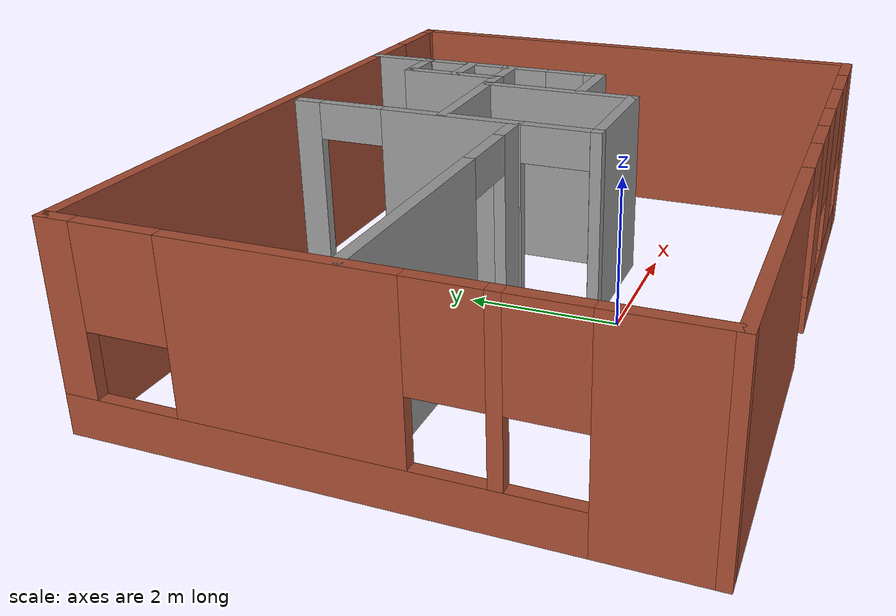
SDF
<?xml version='1.0'?>
<sdf version='1.7'>
  <model name='Building'>
    <pose>0.136171 1.24758 0 0 -0 0</pose>
    <link name='Wall_11'>
      <collision name='Wall_11_Collision'>
        <geometry>
          <box>
            <size>1 0.15 2.5</size>
          </box>
        </geometry>
        <pose>0 0 1.25 0 -0 0</pose>
      </collision>
      <visual name='Wall_11_Visual'>
        <pose>0 0 1.25 0 -0 0</pose>
        <geometry>
          <box>
            <size>1 0.15 2.5</size>
          </box>
        </geometry>
        <material>
          <script>
            <uri>file://media/materials/scripts/gazebo.material</uri>
            <name>Gazebo/Grey</name>
          </script>
          <ambient>1 1 1 1</ambient>
        </material>
        <meta>
          <layer>0</layer>
        </meta>
      </visual>
      <pose>2.54458 2.98678 0 0 -0 -1.5708</pose>
    </link>
    <link name='Wall_12'>
      <collision name='Wall_12_Collision'>
        <geometry>
          <box>
            <size>0.75 0.15 2.5</size>
          </box>
        </geometry>
        <pose>0 0 1.25 0 -0 0</pose>
      </collision>
      <visual name='Wall_12_Visual'>
        <pose>0 0 1.25 0 -0 0</pose>
        <geometry>
          <box>
            <size>0.75 0.15 2.5</size>
          </box>
        </geometry>
        <material>
          <script>
            <uri>file://media/materials/scripts/gazebo.material</uri>
            <name>Gazebo/Grey</name>
          </script>
          <ambient>1 1 1 1</ambient>
        </material>
        <meta>
          <layer>0</layer>
        </meta>
      </visual>
      <pose>2.24458 2.56177 0 0 -0 3.14159</pose>
    </link>
    <link name='Wall_13'>
      <collision name='Wall_13_Collision'>
        <geometry>
          <box>
            <size>1.5 0.15 2.5</size>
          </box>
        </geometry>
        <pose>0 0 1.25 0 -0 0</pose>
      </collision>
      <visual name='Wall_13_Visual'>
        <pose>0 0 1.25 0 -0 0</pose>
        <geometry>
          <box>
            <size>1.5 0.15 2.5</size>
          </box>
        </geometry>
        <material>
          <script>
            <uri>file://media/materials/scripts/gazebo.material</uri>
            <name>Gazebo/Grey</name>
          </script>
          <ambient>1 1 1 1</ambient>
        </material>
        <meta>
          <layer>0</layer>
        </meta>
      </visual>
      <pose>1.94457 1.88678 0 0 -0 -1.5708</pose>
    </link>
    <link name='Wall_14'>
      <collision name='Wall_14_Collision'>
        <geometry>
          <box>
            <size>0.75 0.15 2.5</size>
          </box>
        </geometry>
        <pose>0 0 1.25 0 -0 0</pose>
      </collision>
      <visual name='Wall_14_Visual'>
        <pose>0 0 1.25 0 -0 0</pose>
        <geometry>
          <box>
            <size>0.75 0.15 2.5</size>
          </box>
        </geometry>
        <material>
          <script>
            <uri>file://media/materials/scripts/gazebo.material</uri>
            <name>Gazebo/Grey</name>
          </script>
          <ambient>1 1 1 1</ambient>
        </material>
        <meta>
          <layer>0</layer>
        </meta>
      </visual>
      <pose>2.24458 1.21178 0 0 -0 0</pose>
    </link>
    <link name='Wall_15'>
      <pose>2.54458 0.536775 0 0 -0 -1.5708</pose>
      <visual name='Wall_15_Visual_0'>
        <pose>-0.432046 0 1.25 0 -0 0</pose>
        <geometry>
          <box>
            <size>0.635909 0.15 2.5</size>
          </box>
        </geometry>
        <material>
          <script>
            <uri>file://media/materials/scripts/gazebo.material</uri>
            <name>Gazebo/Grey</name>
          </script>
          <ambient>1 1 1 1</ambient>
        </material>
        <meta>
          <layer>0</layer>
        </meta>
      </visual>
      <collision name='Wall_15_Collision_0'>
        <geometry>
          <box>
            <size>0.635909 0.15 2.5</size>
          </box>
        </geometry>
        <pose>-0.432046 0 1.25 0 -0 0</pose>
      </collision>
      <visual name='Wall_15_Visual_1'>
        <pose>0.600658 0 1.25 0 -0 0</pose>
        <geometry>
          <box>
            <size>0.298684 0.15 2.5</size>
          </box>
        </geometry>
        <material>
          <script>
            <uri>file://media/materials/scripts/gazebo.material</uri>
            <name>Gazebo/Grey</name>
          </script>
          <ambient>1 1 1 1</ambient>
        </material>
        <meta>
          <layer>0</layer>
        </meta>
      </visual>
      <collision name='Wall_15_Collision_1'>
        <geometry>
          <box>
            <size>0.298684 0.15 2.5</size>
          </box>
        </geometry>
        <pose>0.600658 0 1.25 0 -0 0</pose>
      </collision>
      <visual name='Wall_15_Visual_2'>
        <pose>0.168612 0 2.25 0 -0 0</pose>
        <geometry>
          <box>
            <size>0.565408 0.15 0.5</size>
          </box>
        </geometry>
        <material>
          <script>
            <uri>file://media/materials/scripts/gazebo.material</uri>
            <name>Gazebo/Grey</name>
          </script>
          <ambient>1 1 1 1</ambient>
        </material>
        <meta>
          <layer>0</layer>
        </meta>
      </visual>
      <collision name='Wall_15_Collision_2'>
        <geometry>
          <box>
            <size>0.565408 0.15 0.5</size>
          </box>
        </geometry>
        <pose>0.168612 0 2.25 0 -0 0</pose>
      </collision>
    </link>
    <link name='Wall_16'>
      <collision name='Wall_16_Collision'>
        <geometry>
          <box>
            <size>1 0.15 2.5</size>
          </box>
        </geometry>
        <pose>0 0 1.25 0 -0 0</pose>
      </collision>
      <visual name='Wall_16_Visual'>
        <pose>0 0 1.25 0 -0 0</pose>
        <geometry>
          <box>
            <size>1 0.15 2.5</size>
          </box>
        </geometry>
        <material>
          <script>
            <uri>file://media/materials/scripts/gazebo.material</uri>
            <name>Gazebo/Grey</name>
          </script>
          <ambient>1 1 1 1</ambient>
        </material>
        <meta>
          <layer>0</layer>
        </meta>
      </visual>
      <pose>2.11958 -0.138225 0 0 -0 3.14159</pose>
    </link>
    <link name='Wall_18'>
      <collision name='Wall_18_Collision'>
        <geometry>
          <box>
            <size>0.75 0.15 2.5</size>
          </box>
        </geometry>
        <pose>0 0 1.25 0 -0 0</pose>
      </collision>
      <visual name='Wall_18_Visual'>
        <pose>0 0 1.25 0 -0 0</pose>
        <geometry>
          <box>
            <size>0.75 0.15 2.5</size>
          </box>
        </geometry>
        <material>
          <script>
            <uri>file://media/materials/scripts/gazebo.material</uri>
            <name>Gazebo/Grey</name>
          </script>
          <ambient>1 1 1 1</ambient>
        </material>
        <meta>
          <layer>0</layer>
        </meta>
      </visual>
      <pose>2.24945 1.85122 0 0 -0 0</pose>
    </link>
    <link name='Wall_20'>
      <pose>2.54458 1.88678 0 0 -0 -1.5708</pose>
      <visual name='Wall_20_Visual_0'>
        <pose>-0.669571 0 1.25 0 -0 0</pose>
        <geometry>
          <box>
            <size>0.160859 0.15 2.5</size>
          </box>
        </geometry>
        <material>
          <script>
            <uri>file://media/materials/scripts/gazebo.material</uri>
            <name>Gazebo/Grey</name>
          </script>
          <ambient>1 1 1 1</ambient>
        </material>
        <meta>
          <layer>0</layer>
        </meta>
      </visual>
      <collision name='Wall_20_Collision_0'>
        <geometry>
          <box>
            <size>0.160859 0.15 2.5</size>
          </box>
        </geometry>
        <pose>-0.669571 0 1.25 0 -0 0</pose>
      </collision>
      <visual name='Wall_20_Visual_1'>
        <pose>-0.021274 0 1.25 0 -0 0</pose>
        <geometry>
          <box>
            <size>0.065756 0.15 2.5</size>
          </box>
        </geometry>
        <material>
          <script>
            <uri>file://media/materials/scripts/gazebo.material</uri>
            <name>Gazebo/Grey</name>
          </script>
          <ambient>1 1 1 1</ambient>
        </material>
        <meta>
          <layer>0</layer>
        </meta>
      </visual>
      <collision name='Wall_20_Collision_1'>
        <geometry>
          <box>
            <size>0.065756 0.15 2.5</size>
          </box>
        </geometry>
        <pose>-0.021274 0 1.25 0 -0 0</pose>
      </collision>
      <visual name='Wall_20_Visual_2'>
        <pose>0.640693 0 1.25 0 -0 0</pose>
        <geometry>
          <box>
            <size>0.218615 0.15 2.5</size>
          </box>
        </geometry>
        <material>
          <script>
            <uri>file://media/materials/scripts/gazebo.material</uri>
            <name>Gazebo/Grey</name>
          </script>
          <ambient>1 1 1 1</ambient>
        </material>
        <meta>
          <layer>0</layer>
        </meta>
      </visual>
      <collision name='Wall_20_Collision_2'>
        <geometry>
          <box>
            <size>0.218615 0.15 2.5</size>
          </box>
        </geometry>
        <pose>0.640693 0 1.25 0 -0 0</pose>
      </collision>
      <visual name='Wall_20_Visual_3'>
        <pose>-0.321646 0 2.25 0 -0 0</pose>
        <geometry>
          <box>
            <size>0.53499 0.15 0.5</size>
          </box>
        </geometry>
        <material>
          <script>
            <uri>file://media/materials/scripts/gazebo.material</uri>
            <name>Gazebo/Grey</name>
          </script>
          <ambient>1 1 1 1</ambient>
        </material>
        <meta>
          <layer>0</layer>
        </meta>
      </visual>
      <collision name='Wall_20_Collision_3'>
        <geometry>
          <box>
            <size>0.53499 0.15 0.5</size>
          </box>
        </geometry>
        <pose>-0.321646 0 2.25 0 -0 0</pose>
      </collision>
      <visual name='Wall_20_Visual_4'>
        <pose>0.271495 0 2.25 0 -0 0</pose>
        <geometry>
          <box>
            <size>0.519781 0.15 0.5</size>
          </box>
        </geometry>
        <material>
          <script>
            <uri>file://media/materials/scripts/gazebo.material</uri>
            <name>Gazebo/Grey</name>
          </script>
          <ambient>1 1 1 1</ambient>
        </material>
        <meta>
          <layer>0</layer>
        </meta>
      </visual>
      <collision name='Wall_20_Collision_4'>
        <geometry>
          <box>
            <size>0.519781 0.15 0.5</size>
          </box>
        </geometry>
        <pose>0.271495 0 2.25 0 -0 0</pose>
      </collision>
    </link>
    <link name='Wall_22'>
      <collision name='Wall_22_Collision'>
        <geometry>
          <box>
            <size>0.5 0.15 2.5</size>
          </box>
        </geometry>
        <pose>0 0 1.25 0 -0 0</pose>
      </collision>
      <visual name='Wall_22_Visual'>
        <pose>0 0 1.25 0 -0 0</pose>
        <geometry>
          <box>
            <size>0.5 0.15 2.5</size>
          </box>
        </geometry>
        <material>
          <script>
            <uri>file://media/materials/scripts/gazebo.material</uri>
            <name>Gazebo/Grey</name>
          </script>
          <ambient>1 1 1 1</ambient>
        </material>
        <meta>
          <layer>0</layer>
        </meta>
      </visual>
      <pose>1.76957 1.21178 0 0 -0 3.14159</pose>
    </link>
    <link name='Wall_27'>
      <collision name='Wall_27_Collision'>
        <geometry>
          <box>
            <size>2.25 0.15 2.5</size>
          </box>
        </geometry>
        <pose>0 0 1.25 0 -0 0</pose>
      </collision>
      <visual name='Wall_27_Visual'>
        <pose>0 0 1.25 0 -0 0</pose>
        <geometry>
          <box>
            <size>2.25 0.15 2.5</size>
          </box>
        </geometry>
        <material>
          <script>
            <uri>file://media/materials/scripts/gazebo.material</uri>
            <name>Gazebo/Grey</name>
          </script>
          <ambient>1 1 1 1</ambient>
        </material>
        <meta>
          <layer>0</layer>
        </meta>
      </visual>
      <pose>1.59458 0.161775 0 0 -0 -1.5708</pose>
    </link>
    <link name='Wall_28'>
      <collision name='Wall_28_Collision'>
        <geometry>
          <box>
            <size>1.75 0.15 2.5</size>
          </box>
        </geometry>
        <pose>0 0 1.25 0 -0 0</pose>
      </collision>
      <visual name='Wall_28_Visual'>
        <pose>0 0 1.25 0 -0 0</pose>
        <geometry>
          <box>
            <size>1.75 0.15 2.5</size>
          </box>
        </geometry>
        <material>
          <script>
            <uri>file://media/materials/scripts/gazebo.material</uri>
            <name>Gazebo/Grey</name>
          </script>
          <ambient>1 1 1 1</ambient>
        </material>
        <meta>
          <layer>0</layer>
        </meta>
      </visual>
      <pose>0.794575 -0.888225 0 0 -0 3.14159</pose>
    </link>
    <link name='Wall_29'>
      <pose>-0.005425 1.16178 0 0 -0 1.5708</pose>
      <visual name='Wall_29_Visual_0'>
        <pose>-2.04932 0 1.25 0 -0 0</pose>
        <geometry>
          <box>
            <size>0.151368 0.15 2.5</size>
          </box>
        </geometry>
        <material>
          <script>
            <uri>file://media/materials/scripts/gazebo.material</uri>
            <name>Gazebo/Grey</name>
          </script>
          <ambient>1 1 1 1</ambient>
        </material>
        <meta>
          <layer>0</layer>
        </meta>
      </visual>
      <collision name='Wall_29_Collision_0'>
        <geometry>
          <box>
            <size>0.151368 0.15 2.5</size>
          </box>
        </geometry>
        <pose>-2.04932 0 1.25 0 -0 0</pose>
      </collision>
      <visual name='Wall_29_Visual_1'>
        <pose>-0.109219 0 1.25 0 -0 0</pose>
        <geometry>
          <box>
            <size>1.92883 0.15 2.5</size>
          </box>
        </geometry>
        <material>
          <script>
            <uri>file://media/materials/scripts/gazebo.material</uri>
            <name>Gazebo/Grey</name>
          </script>
          <ambient>1 1 1 1</ambient>
        </material>
        <meta>
          <layer>0</layer>
        </meta>
      </visual>
      <collision name='Wall_29_Collision_1'>
        <geometry>
          <box>
            <size>1.92883 0.15 2.5</size>
          </box>
        </geometry>
        <pose>-0.109219 0 1.25 0 -0 0</pose>
      </collision>
      <visual name='Wall_29_Visual_2'>
        <pose>1.9401 0 1.25 0 -0 0</pose>
        <geometry>
          <box>
            <size>0.369805 0.15 2.5</size>
          </box>
        </geometry>
        <material>
          <script>
            <uri>file://media/materials/scripts/gazebo.material</uri>
            <name>Gazebo/Grey</name>
          </script>
          <ambient>1 1 1 1</ambient>
        </material>
        <meta>
          <layer>0</layer>
        </meta>
      </visual>
      <collision name='Wall_29_Collision_2'>
        <geometry>
          <box>
            <size>0.369805 0.15 2.5</size>
          </box>
        </geometry>
        <pose>1.9401 0 1.25 0 -0 0</pose>
      </collision>
      <visual name='Wall_29_Visual_3'>
        <pose>-1.52363 0 2.25 0 -0 0</pose>
        <geometry>
          <box>
            <size>0.9 0.15 0.5</size>
          </box>
        </geometry>
        <material>
          <script>
            <uri>file://media/materials/scripts/gazebo.material</uri>
            <name>Gazebo/Grey</name>
          </script>
          <ambient>1 1 1 1</ambient>
        </material>
        <meta>
          <layer>0</layer>
        </meta>
      </visual>
      <collision name='Wall_29_Collision_3'>
        <geometry>
          <box>
            <size>0.9 0.15 0.5</size>
          </box>
        </geometry>
        <pose>-1.52363 0 2.25 0 -0 0</pose>
      </collision>
      <visual name='Wall_29_Visual_4'>
        <pose>1.3052 0 2.25 0 -0 0</pose>
        <geometry>
          <box>
            <size>0.9 0.15 0.5</size>
          </box>
        </geometry>
        <material>
          <script>
            <uri>file://media/materials/scripts/gazebo.material</uri>
            <name>Gazebo/Grey</name>
          </script>
          <ambient>1 1 1 1</ambient>
        </material>
        <meta>
          <layer>0</layer>
        </meta>
      </visual>
      <collision name='Wall_29_Collision_4'>
        <geometry>
          <box>
            <size>0.9 0.15 0.5</size>
          </box>
        </geometry>
        <pose>1.3052 0 2.25 0 -0 0</pose>
      </collision>
    </link>
    <link name='Wall_31'>
      <pose>-2.22677 0.188172 0 0 -0 0</pose>
      <visual name='Wall_31_Visual_0'>
        <pose>-0.736193 0 1.25 0 -0 0</pose>
        <geometry>
          <box>
            <size>3.02761 0.15 2.5</size>
          </box>
        </geometry>
        <material>
          <script>
            <uri>file://media/materials/scripts/gazebo.material</uri>
            <name>Gazebo/Grey</name>
          </script>
          <ambient>1 1 1 1</ambient>
        </material>
        <meta>
          <layer>0</layer>
        </meta>
      </visual>
      <collision name='Wall_31_Collision_0'>
        <geometry>
          <box>
            <size>3.02761 0.15 2.5</size>
          </box>
        </geometry>
        <pose>-0.736193 0 1.25 0 -0 0</pose>
      </collision>
      <visual name='Wall_31_Visual_1'>
        <pose>1.96381 0 1.25 0 -0 0</pose>
        <geometry>
          <box>
            <size>0.572386 0.15 2.5</size>
          </box>
        </geometry>
        <material>
          <script>
            <uri>file://media/materials/scripts/gazebo.material</uri>
            <name>Gazebo/Grey</name>
          </script>
          <ambient>1 1 1 1</ambient>
        </material>
        <meta>
          <layer>0</layer>
        </meta>
      </visual>
      <collision name='Wall_31_Collision_1'>
        <geometry>
          <box>
            <size>0.572386 0.15 2.5</size>
          </box>
        </geometry>
        <pose>1.96381 0 1.25 0 -0 0</pose>
      </collision>
      <visual name='Wall_31_Visual_2'>
        <pose>1.22761 0 2.25 0 -0 0</pose>
        <geometry>
          <box>
            <size>0.9 0.15 0.5</size>
          </box>
        </geometry>
        <material>
          <script>
            <uri>file://media/materials/scripts/gazebo.material</uri>
            <name>Gazebo/Grey</name>
          </script>
          <ambient>1 1 1 1</ambient>
        </material>
        <meta>
          <layer>0</layer>
        </meta>
      </visual>
      <collision name='Wall_31_Collision_2'>
        <geometry>
          <box>
            <size>0.9 0.15 0.5</size>
          </box>
        </geometry>
        <pose>1.22761 0 2.25 0 -0 0</pose>
      </collision>
    </link>
    <link name='Wall_33'>
      <collision name='Wall_33_Collision'>
        <geometry>
          <box>
            <size>1.7121 0.15 2.5</size>
          </box>
        </geometry>
        <pose>0 0 1.25 0 -0 0</pose>
      </collision>
      <visual name='Wall_33_Visual'>
        <pose>0 0 1.25 0 -0 0</pose>
        <geometry>
          <box>
            <size>1.7121 0.15 2.5</size>
          </box>
        </geometry>
        <material>
          <script>
            <uri>file://media/materials/scripts/gazebo.material</uri>
            <name>Gazebo/Grey</name>
          </script>
          <ambient>1 1 1 1</ambient>
        </material>
        <meta>
          <layer>0</layer>
        </meta>
      </visual>
      <pose>0.813792 1.19128 0 0 -0 0.026246</pose>
    </link>
    <link name='Wall_6'>
      <pose>-0 3.425 0 0 -0 0</pose>
      <visual name='Wall_6_Visual_0'>
        <pose>-0.576234 0 1.25 0 -0 0</pose>
        <geometry>
          <box>
            <size>7.84753 0.15 2.5</size>
          </box>
        </geometry>
        <material>
          <script>
            <uri>file://media/materials/scripts/gazebo.material</uri>
            <name>Gazebo/Bricks</name>
          </script>
          <ambient>1 1 1 1</ambient>
        </material>
        <meta>
          <layer>0</layer>
        </meta>
      </visual>
      <collision name='Wall_6_Collision_0'>
        <geometry>
          <box>
            <size>7.84753 0.15 2.5</size>
          </box>
        </geometry>
        <pose>-0.576234 0 1.25 0 -0 0</pose>
      </collision>
      <visual name='Wall_6_Visual_1'>
        <pose>4.37377 0 1.25 0 -0 0</pose>
        <geometry>
          <box>
            <size>0.252468 0.15 2.5</size>
          </box>
        </geometry>
        <material>
          <script>
            <uri>file://media/materials/scripts/gazebo.material</uri>
            <name>Gazebo/Bricks</name>
          </script>
          <ambient>1 1 1 1</ambient>
        </material>
        <meta>
          <layer>0</layer>
        </meta>
      </visual>
      <collision name='Wall_6_Collision_1'>
        <geometry>
          <box>
            <size>0.252468 0.15 2.5</size>
          </box>
        </geometry>
        <pose>4.37377 0 1.25 0 -0 0</pose>
      </collision>
      <visual name='Wall_6_Visual_2'>
        <pose>3.79753 0 2.25 0 -0 0</pose>
        <geometry>
          <box>
            <size>0.9 0.15 0.5</size>
          </box>
        </geometry>
        <material>
          <script>
            <uri>file://media/materials/scripts/gazebo.material</uri>
            <name>Gazebo/Bricks</name>
          </script>
          <ambient>1 1 1 1</ambient>
        </material>
        <meta>
          <layer>0</layer>
        </meta>
      </visual>
      <collision name='Wall_6_Collision_2'>
        <geometry>
          <box>
            <size>0.9 0.15 0.5</size>
          </box>
        </geometry>
        <pose>3.79753 0 2.25 0 -0 0</pose>
      </collision>
    </link>
    <link name='Wall_7'>
      <collision name='Wall_7_Collision'>
        <geometry>
          <box>
            <size>7 0.15 2.5</size>
          </box>
        </geometry>
        <pose>0 0 1.25 0 -0 0</pose>
      </collision>
      <visual name='Wall_7_Visual'>
        <pose>0 0 1.25 0 -0 0</pose>
        <geometry>
          <box>
            <size>7 0.15 2.5</size>
          </box>
        </geometry>
        <material>
          <script>
            <uri>file://media/materials/scripts/gazebo.material</uri>
            <name>Gazebo/Bricks</name>
          </script>
          <ambient>1 1 1 1</ambient>
        </material>
        <meta>
          <layer>0</layer>
        </meta>
      </visual>
      <pose>4.425 -0 0 0 -0 -1.5708</pose>
    </link>
    <link name='Wall_8'>
      <pose>-0 -3.425 0 0 -0 3.14159</pose>
      <visual name='Wall_8_Visual_0'>
        <pose>-4.13288 0 1.25 0 -0 0</pose>
        <geometry>
          <box>
            <size>0.734248 0.15 2.5</size>
          </box>
        </geometry>
        <material>
          <script>
            <uri>file://media/materials/scripts/gazebo.material</uri>
            <name>Gazebo/Bricks</name>
          </script>
          <ambient>1 1 1 1</ambient>
        </material>
        <meta>
          <layer>0</layer>
        </meta>
      </visual>
      <collision name='Wall_8_Collision_0'>
        <geometry>
          <box>
            <size>0.734248 0.15 2.5</size>
          </box>
        </geometry>
        <pose>-4.13288 0 1.25 0 -0 0</pose>
      </collision>
      <visual name='Wall_8_Visual_1'>
        <pose>2.48029 0 1.25 0 -0 0</pose>
        <geometry>
          <box>
            <size>4.03941 0.15 2.5</size>
          </box>
        </geometry>
        <material>
          <script>
            <uri>file://media/materials/scripts/gazebo.material</uri>
            <name>Gazebo/Bricks</name>
          </script>
          <ambient>1 1 1 1</ambient>
        </material>
        <meta>
          <layer>0</layer>
        </meta>
      </visual>
      <collision name='Wall_8_Collision_1'>
        <geometry>
          <box>
            <size>4.03941 0.15 2.5</size>
          </box>
        </geometry>
        <pose>2.48029 0 1.25 0 -0 0</pose>
      </collision>
      <visual name='Wall_8_Visual_2'>
        <pose>-2.10258 0 0.25 0 -0 0</pose>
        <geometry>
          <box>
            <size>3.32634 0.15 0.5</size>
          </box>
        </geometry>
        <material>
          <script>
            <uri>file://media/materials/scripts/gazebo.material</uri>
            <name>Gazebo/Bricks</name>
          </script>
          <ambient>1 1 1 1</ambient>
        </material>
        <meta>
          <layer>0</layer>
        </meta>
      </visual>
      <collision name='Wall_8_Collision_2'>
        <geometry>
          <box>
            <size>3.32634 0.15 0.5</size>
          </box>
        </geometry>
        <pose>-2.10258 0 0.25 0 -0 0</pose>
      </collision>
      <visual name='Wall_8_Visual_3'>
        <pose>-2.46844 0 1.5 0 -0 0</pose>
        <geometry>
          <box>
            <size>0.994633 0.15 2</size>
          </box>
        </geometry>
        <material>
          <script>
            <uri>file://media/materials/scripts/gazebo.material</uri>
            <name>Gazebo/Bricks</name>
          </script>
          <ambient>1 1 1 1</ambient>
        </material>
        <meta>
          <layer>0</layer>
        </meta>
      </visual>
      <collision name='Wall_8_Collision_3'>
        <geometry>
          <box>
            <size>0.994633 0.15 2</size>
          </box>
        </geometry>
        <pose>-2.46844 0 1.5 0 -0 0</pose>
      </collision>
      <visual name='Wall_8_Visual_4'>
        <pose>-0.805265 0 1.5 0 -0 0</pose>
        <geometry>
          <box>
            <size>0.73171 0.15 2</size>
          </box>
        </geometry>
        <material>
          <script>
            <uri>file://media/materials/scripts/gazebo.material</uri>
            <name>Gazebo/Bricks</name>
          </script>
          <ambient>1 1 1 1</ambient>
        </material>
        <meta>
          <layer>0</layer>
        </meta>
      </visual>
      <collision name='Wall_8_Collision_4'>
        <geometry>
          <box>
            <size>0.73171 0.15 2</size>
          </box>
        </geometry>
        <pose>-0.805265 0 1.5 0 -0 0</pose>
      </collision>
      <visual name='Wall_8_Visual_5'>
        <pose>-3.36575 0 1.9 0 -0 0</pose>
        <geometry>
          <box>
            <size>0.8 0.15 1.2</size>
          </box>
        </geometry>
        <material>
          <script>
            <uri>file://media/materials/scripts/gazebo.material</uri>
            <name>Gazebo/Bricks</name>
          </script>
          <ambient>1 1 1 1</ambient>
        </material>
        <meta>
          <layer>0</layer>
        </meta>
      </visual>
      <collision name='Wall_8_Collision_5'>
        <geometry>
          <box>
            <size>0.8 0.15 1.2</size>
          </box>
        </geometry>
        <pose>-3.36575 0 1.9 0 -0 0</pose>
      </collision>
      <visual name='Wall_8_Visual_6'>
        <pose>-1.57112 0 1.9 0 -0 0</pose>
        <geometry>
          <box>
            <size>0.8 0.15 1.2</size>
          </box>
        </geometry>
        <material>
          <script>
            <uri>file://media/materials/scripts/gazebo.material</uri>
            <name>Gazebo/Bricks</name>
          </script>
          <ambient>1 1 1 1</ambient>
        </material>
        <meta>
          <layer>0</layer>
        </meta>
      </visual>
      <collision name='Wall_8_Collision_6'>
        <geometry>
          <box>
            <size>0.8 0.15 1.2</size>
          </box>
        </geometry>
        <pose>-1.57112 0 1.9 0 -0 0</pose>
      </collision>
      <visual name='Wall_8_Visual_7'>
        <pose>0.01059 0 2.25 0 -0 0</pose>
        <geometry>
          <box>
            <size>0.9 0.15 0.5</size>
          </box>
        </geometry>
        <material>
          <script>
            <uri>file://media/materials/scripts/gazebo.material</uri>
            <name>Gazebo/Bricks</name>
          </script>
          <ambient>1 1 1 1</ambient>
        </material>
        <meta>
          <layer>0</layer>
        </meta>
      </visual>
      <collision name='Wall_8_Collision_7'>
        <geometry>
          <box>
            <size>0.9 0.15 0.5</size>
          </box>
        </geometry>
        <pose>0.01059 0 2.25 0 -0 0</pose>
      </collision>
    </link>
    <link name='Wall_9'>
      <pose>-4.425 -0 0 0 -0 1.5708</pose>
      <visual name='Wall_9_Visual_0'>
        <pose>-2.85334 0 1.25 0 -0 0</pose>
        <geometry>
          <box>
            <size>1.29331 0.15 2.5</size>
          </box>
        </geometry>
        <material>
          <script>
            <uri>file://media/materials/scripts/gazebo.material</uri>
            <name>Gazebo/Bricks</name>
          </script>
          <ambient>1 1 1 1</ambient>
        </material>
        <meta>
          <layer>0</layer>
        </meta>
      </visual>
      <collision name='Wall_9_Collision_0'>
        <geometry>
          <box>
            <size>1.29331 0.15 2.5</size>
          </box>
        </geometry>
        <pose>-2.85334 0 1.25 0 -0 0</pose>
      </collision>
      <visual name='Wall_9_Visual_1'>
        <pose>0.646656 0 0.25 0 -0 0</pose>
        <geometry>
          <box>
            <size>5.70669 0.15 0.5</size>
          </box>
        </geometry>
        <material>
          <script>
            <uri>file://media/materials/scripts/gazebo.material</uri>
            <name>Gazebo/Bricks</name>
          </script>
          <ambient>1 1 1 1</ambient>
        </material>
        <meta>
          <layer>0</layer>
        </meta>
      </visual>
      <collision name='Wall_9_Collision_1'>
        <geometry>
          <box>
            <size>5.70669 0.15 0.5</size>
          </box>
        </geometry>
        <pose>0.646656 0 0.25 0 -0 0</pose>
      </collision>
      <visual name='Wall_9_Visual_2'>
        <pose>-1.32761 0 1.5 0 -0 0</pose>
        <geometry>
          <box>
            <size>0.158151 0.15 2</size>
          </box>
        </geometry>
        <material>
          <script>
            <uri>file://media/materials/scripts/gazebo.material</uri>
            <name>Gazebo/Bricks</name>
          </script>
          <ambient>1 1 1 1</ambient>
        </material>
        <meta>
          <layer>0</layer>
        </meta>
      </visual>
      <collision name='Wall_9_Collision_2'>
        <geometry>
          <box>
            <size>0.158151 0.15 2</size>
          </box>
        </geometry>
        <pose>-1.32761 0 1.5 0 -0 0</pose>
      </collision>
      <visual name='Wall_9_Visual_3'>
        <pose>0.824425 0 1.5 0 -0 0</pose>
        <geometry>
          <box>
            <size>2.54592 0.15 2</size>
          </box>
        </geometry>
        <material>
          <script>
            <uri>file://media/materials/scripts/gazebo.material</uri>
            <name>Gazebo/Bricks</name>
          </script>
          <ambient>1 1 1 1</ambient>
        </material>
        <meta>
          <layer>0</layer>
        </meta>
      </visual>
      <collision name='Wall_9_Collision_3'>
        <geometry>
          <box>
            <size>2.54592 0.15 2</size>
          </box>
        </geometry>
        <pose>0.824425 0 1.5 0 -0 0</pose>
      </collision>
      <visual name='Wall_9_Visual_4'>
        <pose>3.28995 0 1.5 0 -0 0</pose>
        <geometry>
          <box>
            <size>0.420107 0.15 2</size>
          </box>
        </geometry>
        <material>
          <script>
            <uri>file://media/materials/scripts/gazebo.material</uri>
            <name>Gazebo/Bricks</name>
          </script>
          <ambient>1 1 1 1</ambient>
        </material>
        <meta>
          <layer>0</layer>
        </meta>
      </visual>
      <collision name='Wall_9_Collision_4'>
        <geometry>
          <box>
            <size>0.420107 0.15 2</size>
          </box>
        </geometry>
        <pose>3.28995 0 1.5 0 -0 0</pose>
      </collision>
      <visual name='Wall_9_Visual_5'>
        <pose>-1.80669 0 1.9 0 -0 0</pose>
        <geometry>
          <box>
            <size>0.8 0.15 1.2</size>
          </box>
        </geometry>
        <material>
          <script>
            <uri>file://media/materials/scripts/gazebo.material</uri>
            <name>Gazebo/Bricks</name>
          </script>
          <ambient>1 1 1 1</ambient>
        </material>
        <meta>
          <layer>0</layer>
        </meta>
      </visual>
      <collision name='Wall_9_Collision_5'>
        <geometry>
          <box>
            <size>0.8 0.15 1.2</size>
          </box>
        </geometry>
        <pose>-1.80669 0 1.9 0 -0 0</pose>
      </collision>
      <visual name='Wall_9_Visual_6'>
        <pose>-0.848537 0 1.9 0 -0 0</pose>
        <geometry>
          <box>
            <size>0.8 0.15 1.2</size>
          </box>
        </geometry>
        <material>
          <script>
            <uri>file://media/materials/scripts/gazebo.material</uri>
            <name>Gazebo/Bricks</name>
          </script>
          <ambient>1 1 1 1</ambient>
        </material>
        <meta>
          <layer>0</layer>
        </meta>
      </visual>
      <collision name='Wall_9_Collision_6'>
        <geometry>
          <box>
            <size>0.8 0.15 1.2</size>
          </box>
        </geometry>
        <pose>-0.848537 0 1.9 0 -0 0</pose>
      </collision>
      <visual name='Wall_9_Visual_7'>
        <pose>2.58864 0 1.9 0 -0 0</pose>
        <geometry>
          <box>
            <size>0.982505 0.15 1.2</size>
          </box>
        </geometry>
        <material>
          <script>
            <uri>file://media/materials/scripts/gazebo.material</uri>
            <name>Gazebo/Bricks</name>
          </script>
          <ambient>1 1 1 1</ambient>
        </material>
        <meta>
          <layer>0</layer>
        </meta>
      </visual>
      <collision name='Wall_9_Collision_7'>
        <geometry>
          <box>
            <size>0.982505 0.15 1.2</size>
          </box>
        </geometry>
        <pose>2.58864 0 1.9 0 -0 0</pose>
      </collision>
    </link>
    <static>1</static>
  </model>
</sdf>
